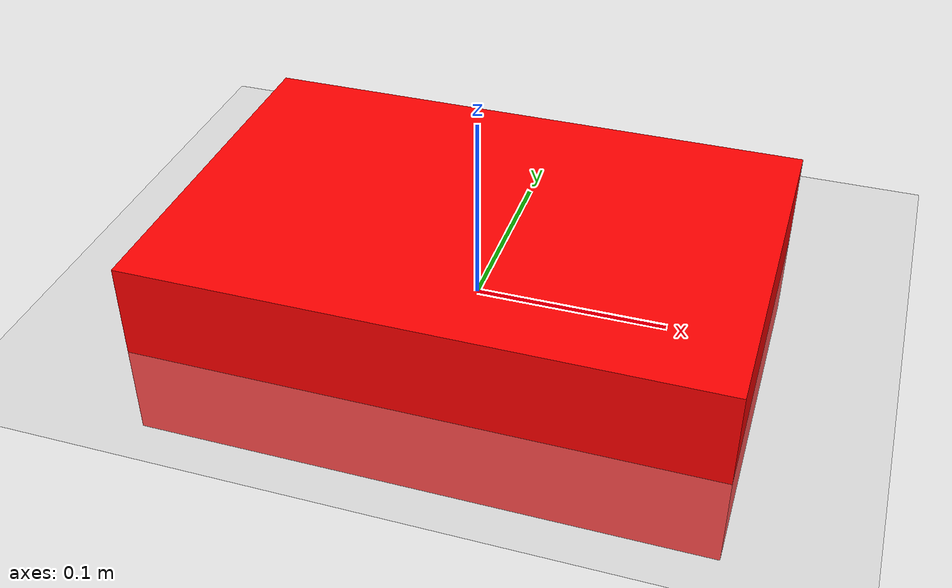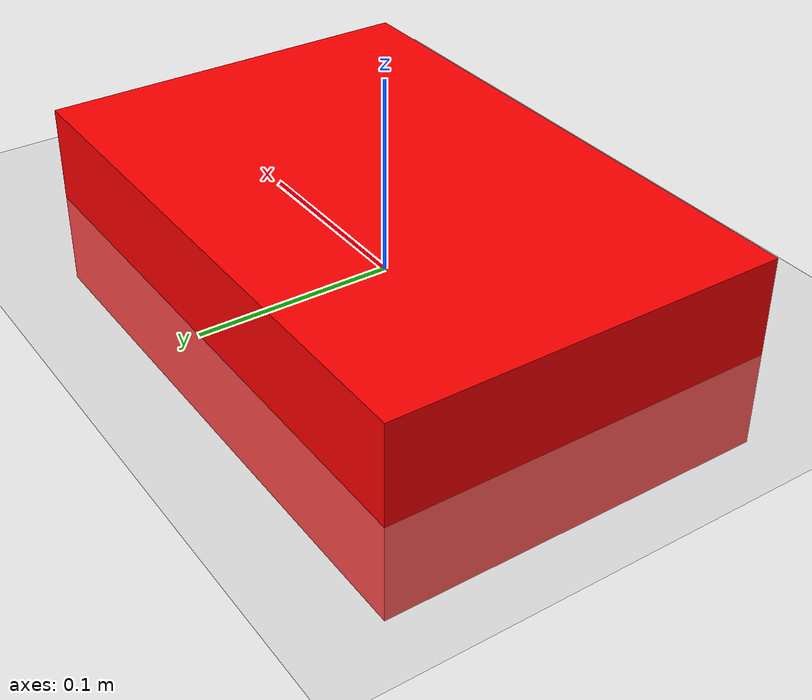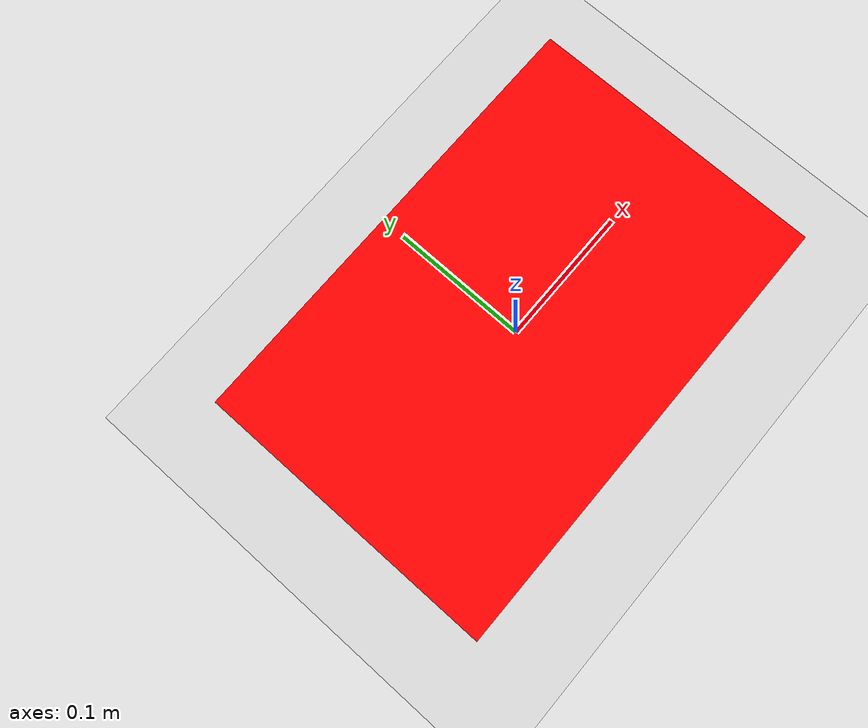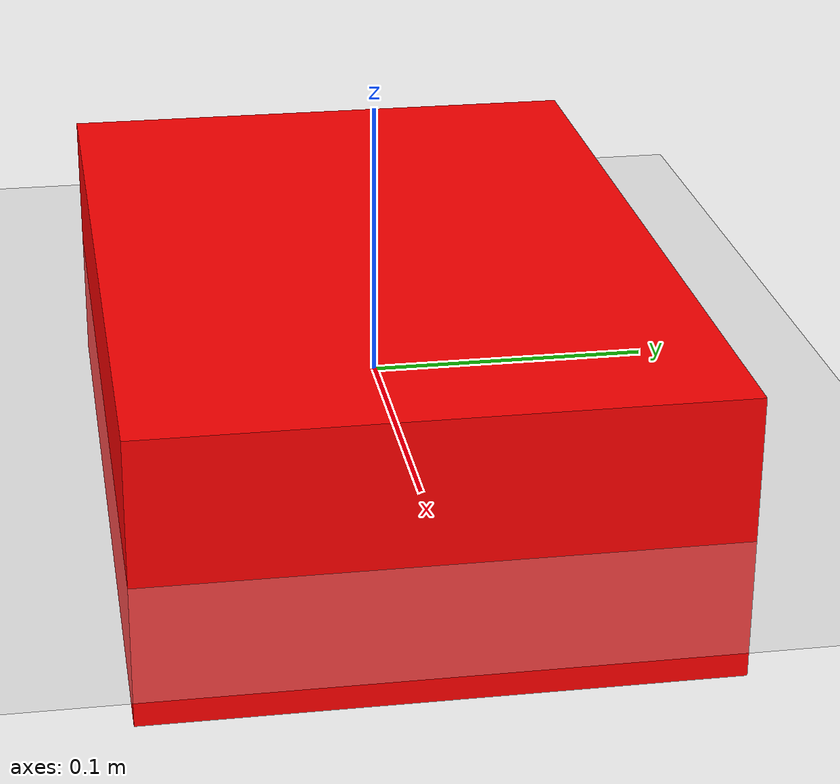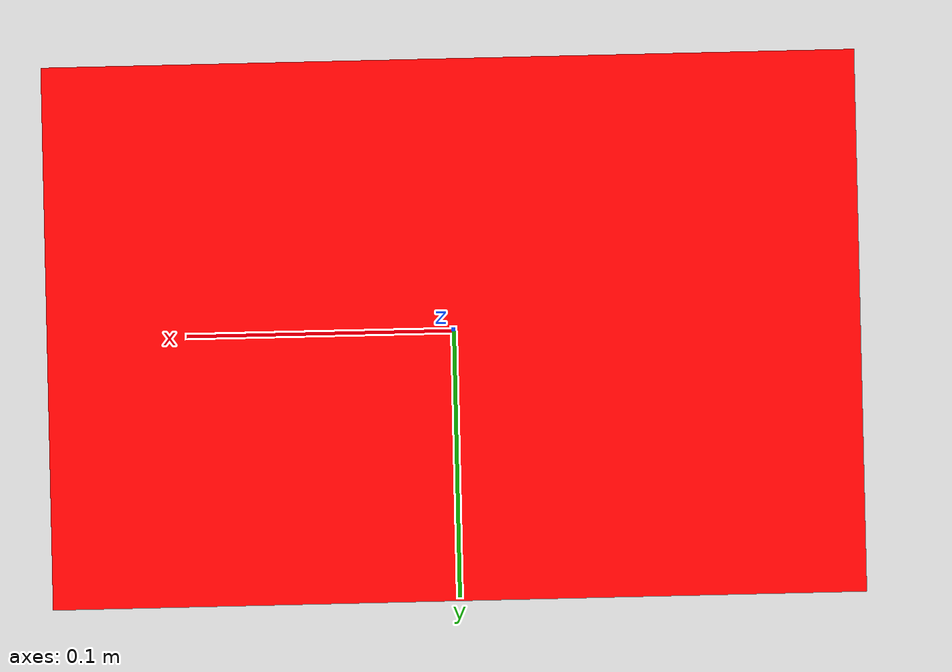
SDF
<?xml version="1.0" ?>
<sdf version="1.7">
  <world name="simple_world">
    <!-- Simple light -->
    <light type="directional" name="sun">
      <pose>0 0 10 0 0 0</pose>
      <diffuse>0.8 0.8 0.8 1</diffuse>
      <direction>-0.5 0.1 -0.9</direction>
    </light>

    <!-- Simple ground -->
    <model name="ground">
      <static>true</static>
      <link name="link">
        <collision name="collision">
          <geometry>
            <plane>
              <normal>0 0 1</normal>
              <size>10 10</size>
            </plane>
          </geometry>
        </collision>
        <visual name="visual">
          <geometry>
            <plane>
              <normal>0 0 1</normal>
              <size>10 10</size>
            </plane>
          </geometry>
          <material>
            <ambient>0.8 0.8 0.8 1</ambient>
            <diffuse>0.8 0.8 0.8 1</diffuse>
          </material>
        </visual>
      </link>
    </model>

    <!-- Simple robot -->
    <model name="simple_robot">
      <static>false</static>
      <link name="base">
        <collision name="collision">
          <geometry>
            <box>
              <size>0.3 0.2 0.1</size>
            </box>
          </geometry>
        </collision>
        <visual name="visual">
          <geometry>
            <box>
              <size>0.3 0.2 0.1</size>
            </box>
          </geometry>
          <material>
            <ambient>1 0 0 1</ambient>
            <diffuse>1 0 0 1</diffuse>
          </material>
        </visual>
        <inertial>
          <mass>1.0</mass>
          <inertia>
            <ixx>0.01</ixx>
            <ixy>0</ixy>
            <ixz>0</ixz>
            <iyy>0.01</iyy>
            <iyz>0</iyz>
            <izz>0.01</izz>
          </inertia>
        </inertial>
      </link>
    </model>

    <!-- Basic physics -->
    <physics type="ode">
      <max_step_size>0.001</max_step_size>
      <real_time_factor>1</real_time_factor>
      <real_time_update_rate>1000</real_time_update_rate>
      <gravity>0 0 -9.81</gravity>
    </physics>

  </world>
</sdf>
